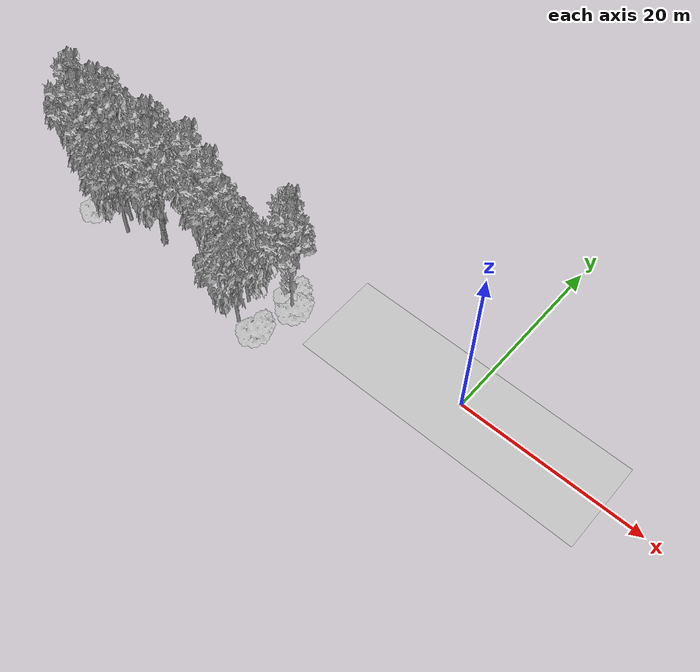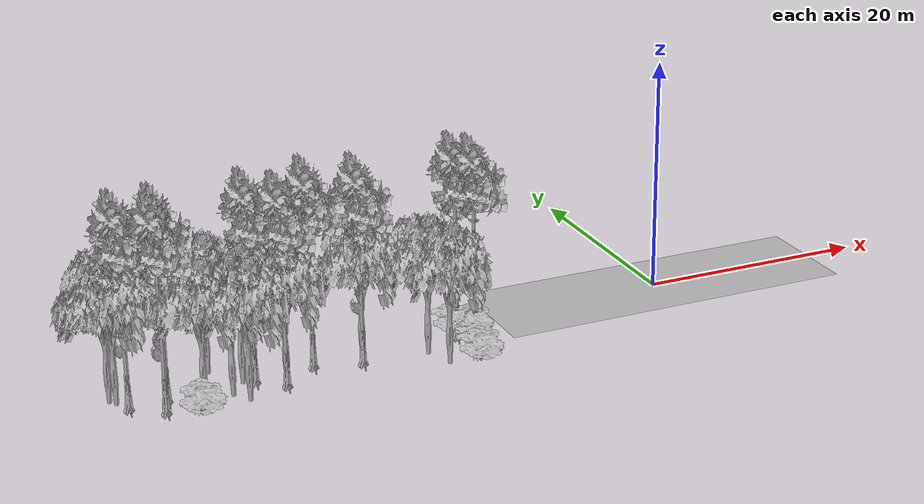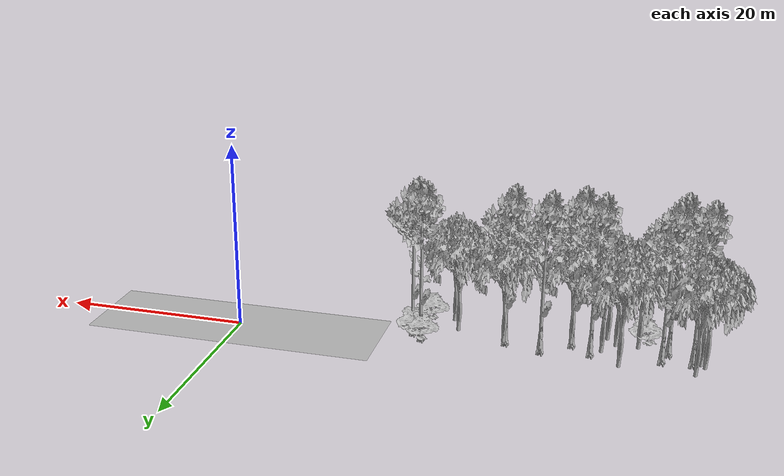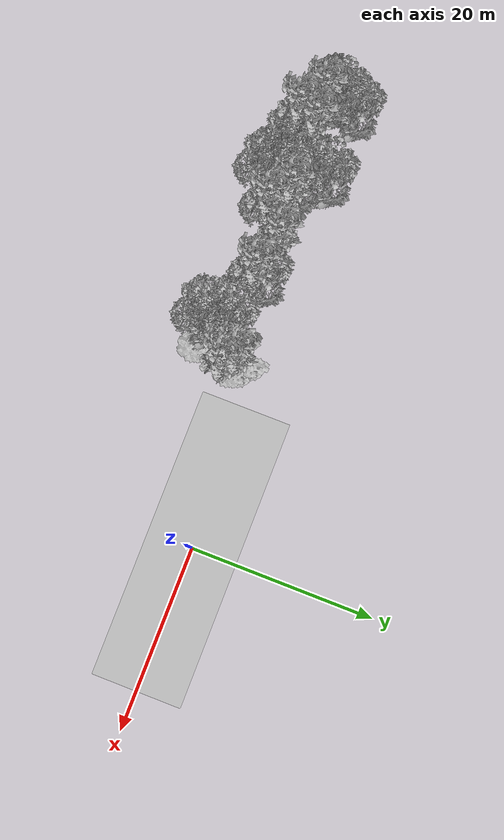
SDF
<sdf version="1.7">
 <world name="default">
  <model name="ground_plane">
   <static>1</static>
   <link name="link">
    <collision name="collision">
     <pose>-50 0 0 0 -0 0</pose>
     <geometry><plane><normal>0 0 1</normal><size>100 100</size></plane></geometry>
     <surface><contact><ode><min_depth>0.01</min_depth><max_vel>0</max_vel></ode></contact></surface>
    </collision>
    <visual name="grass">
     <cast_shadows>0</cast_shadows>
     <geometry>
      <mesh>
       <scale>0.5814285714285714 0.18142857142857144 0.1</scale>
       <uri>file://grass_plane/meshes/grass_plane.dae</uri>
      </mesh>
     </geometry>
    </visual>
   </link>
  </model>
  <model name="Tree 6">
   <static>1</static>
   <pose>-19.921143829720222 -7.141556950328466 0 1.57079 -0 0</pose>
   <link name="link">
    <collision name="collision">
     <geometry><mesh><scale>4 2.5 4</scale><uri>model://tree_1/meshes/tree_1.obj</uri></mesh></geometry>
    </collision>
    <visual name="visual">
     <geometry><mesh><scale>4 2.5 4</scale><uri>model://tree_1/meshes/tree_1.obj</uri></mesh></geometry>
    </visual>
   </link>
  </model>
  <model name="Tree 12">
   <static>1</static>
   <pose>-35.21450316078336 -4.842496373526851 0 1.57079 -0 0</pose>
   <link name="link">
    <collision name="collision">
     <geometry><mesh><scale>3.5 5 3.5</scale><uri>model://tree_9/meshes/tree_9.obj</uri></mesh></geometry>
    </collision>
    <visual name="visual">
     <geometry><mesh><scale>3.5 5 3.5</scale><uri>model://tree_9/meshes/tree_9.obj</uri></mesh></geometry>
    </visual>
   </link>
  </model>
  <model name="Tree 17">
   <static>1</static>
   <pose>-32.1912204562856 -2.5034486556960456 0 1.57079 -0 0</pose>
   <link name="link">
    <collision name="collision">
     <geometry><mesh><scale>3.5 5 3.5</scale><uri>model://tree_9/meshes/tree_9.obj</uri></mesh></geometry>
    </collision>
    <visual name="visual">
     <geometry><mesh><scale>3.5 5 3.5</scale><uri>model://tree_9/meshes/tree_9.obj</uri></mesh></geometry>
    </visual>
   </link>
  </model>
  <model name="Tree 32">
   <static>1</static>
   <pose>-23.273991926518562 -4.668934626666928 0 1.57079 -0 0</pose>
   <link name="link">
    <collision name="collision">
     <geometry><mesh><scale>3.5 5 3.5</scale><uri>model://tree_2/meshes/tree_2.obj</uri></mesh></geometry>
    </collision>
    <visual name="visual">
     <geometry><mesh><scale>3.5 5 3.5</scale><uri>model://tree_2/meshes/tree_2.obj</uri></mesh></geometry>
    </visual>
   </link>
  </model>
  <model name="Tree 53">
   <static>1</static>
   <pose>-48.74463080251558 -2.494339242078734 0 1.57079 -0 0</pose>
   <link name="link">
    <collision name="collision">
     <geometry><mesh><scale>3.5 5 3.5</scale><uri>model://tree_2/meshes/tree_2.obj</uri></mesh></geometry>
    </collision>
    <visual name="visual">
     <geometry><mesh><scale>3.5 5 3.5</scale><uri>model://tree_2/meshes/tree_2.obj</uri></mesh></geometry>
    </visual>
   </link>
  </model>
  <model name="Tree 55">
   <static>1</static>
   <pose>-37.256097933225696 -3.1840490196857267 0 1.57079 -0 0</pose>
   <link name="link">
    <collision name="collision">
     <geometry><mesh><scale>3.5 5 3.5</scale><uri>model://tree_9/meshes/tree_9.obj</uri></mesh></geometry>
    </collision>
    <visual name="visual">
     <geometry><mesh><scale>3.5 5 3.5</scale><uri>model://tree_9/meshes/tree_9.obj</uri></mesh></geometry>
    </visual>
   </link>
  </model>
  <model name="Tree 64">
   <static>1</static>
   <pose>-42.840589987612645 -6.923950979078535 0 1.57079 -0 0</pose>
   <link name="link">
    <collision name="collision">
     <geometry><mesh><scale>4 2.5 4</scale><uri>model://tree_1/meshes/tree_1.obj</uri></mesh></geometry>
    </collision>
    <visual name="visual">
     <geometry><mesh><scale>4 2.5 4</scale><uri>model://tree_1/meshes/tree_1.obj</uri></mesh></geometry>
    </visual>
   </link>
  </model>
  <model name="Tree 94">
   <static>1</static>
   <pose>-47.460586672422366 -3.5688703568057267 0 1.57079 -0 0</pose>
   <link name="link">
    <collision name="collision">
     <geometry><mesh><scale>3.5 5 3.5</scale><uri>model://tree_9/meshes/tree_9.obj</uri></mesh></geometry>
    </collision>
    <visual name="visual">
     <geometry><mesh><scale>3.5 5 3.5</scale><uri>model://tree_9/meshes/tree_9.obj</uri></mesh></geometry>
    </visual>
   </link>
  </model>
  <model name="Tree 138">
   <static>1</static>
   <pose>-18.775179936698713 -2.748795533213306 0 1.57079 -0 0</pose>
   <link name="link">
    <collision name="collision">
     <geometry><mesh><scale>4 2.5 4</scale><uri>model://tree_1/meshes/tree_1.obj</uri></mesh></geometry>
    </collision>
    <visual name="visual">
     <geometry><mesh><scale>4 2.5 4</scale><uri>model://tree_1/meshes/tree_1.obj</uri></mesh></geometry>
    </visual>
   </link>
  </model>
  <model name="Tree 141">
   <static>1</static>
   <pose>-40.38012025350969 -0.6694105297402153 0 1.57079 -0 0</pose>
   <link name="link">
    <collision name="collision">
     <geometry><mesh><scale>3.5 5 3.5</scale><uri>model://tree_2/meshes/tree_2.obj</uri></mesh></geometry>
    </collision>
    <visual name="visual">
     <geometry><mesh><scale>3.5 5 3.5</scale><uri>model://tree_2/meshes/tree_2.obj</uri></mesh></geometry>
    </visual>
   </link>
  </model>
  <model name="Tree 143">
   <static>1</static>
   <pose>-28.394436151200903 -3.580541412584541 0 1.57079 -0 0</pose>
   <link name="link">
    <collision name="collision">
     <geometry><mesh><scale>3.5 5 3.5</scale><uri>model://tree_9/meshes/tree_9.obj</uri></mesh></geometry>
    </collision>
    <visual name="visual">
     <geometry><mesh><scale>3.5 5 3.5</scale><uri>model://tree_9/meshes/tree_9.obj</uri></mesh></geometry>
    </visual>
   </link>
  </model>
  <model name="Tree 149">
   <static>1</static>
   <pose>-42.077103455713406 -5.350111635339076 0 1.57079 -0 0</pose>
   <link name="link">
    <collision name="collision">
     <geometry><mesh><scale>3.5 5 3.5</scale><uri>model://tree_2/meshes/tree_2.obj</uri></mesh></geometry>
    </collision>
    <visual name="visual">
     <geometry><mesh><scale>3.5 5 3.5</scale><uri>model://tree_2/meshes/tree_2.obj</uri></mesh></geometry>
    </visual>
   </link>
  </model>
  <model name="Tree 169">
   <static>1</static>
   <pose>-19.599579066360214 -2.169024919764622 0 1.57079 -0 0</pose>
   <link name="link">
    <collision name="collision">
     <geometry><mesh><scale>3.5 5 3.5</scale><uri>model://tree_9/meshes/tree_9.obj</uri></mesh></geometry>
    </collision>
    <visual name="visual">
     <geometry><mesh><scale>3.5 5 3.5</scale><uri>model://tree_9/meshes/tree_9.obj</uri></mesh></geometry>
    </visual>
   </link>
  </model>
  <model name="Tree 201">
   <static>1</static>
   <pose>-44.40741966262692 -3.455753523725006 0 1.57079 -0 0</pose>
   <link name="link">
    <collision name="collision">
     <geometry><mesh><scale>3.5 5 3.5</scale><uri>model://tree_9/meshes/tree_9.obj</uri></mesh></geometry>
    </collision>
    <visual name="visual">
     <geometry><mesh><scale>3.5 5 3.5</scale><uri>model://tree_9/meshes/tree_9.obj</uri></mesh></geometry>
    </visual>
   </link>
  </model>
  <model name="Tree 223">
   <static>1</static>
   <pose>-35.23256831414867 -4.641663941517633 0 1.57079 -0 0</pose>
   <link name="link">
    <collision name="collision">
     <geometry><mesh><scale>3.5 5 3.5</scale><uri>model://tree_2/meshes/tree_2.obj</uri></mesh></geometry>
    </collision>
    <visual name="visual">
     <geometry><mesh><scale>3.5 5 3.5</scale><uri>model://tree_2/meshes/tree_2.obj</uri></mesh></geometry>
    </visual>
   </link>
  </model>
  <model name="Tree 226">
   <static>1</static>
   <pose>-22.406267525618176 -7.038932187048327 0 1.57079 -0 0</pose>
   <link name="link">
    <collision name="collision">
     <geometry><mesh><scale>3.5 5 3.5</scale><uri>model://tree_2/meshes/tree_2.obj</uri></mesh></geometry>
    </collision>
    <visual name="visual">
     <geometry><mesh><scale>3.5 5 3.5</scale><uri>model://tree_2/meshes/tree_2.obj</uri></mesh></geometry>
    </visual>
   </link>
  </model>
  <model name="Tree 228">
   <static>1</static>
   <pose>-47.82799494953469 -0.6526142325046038 0 1.57079 -0 0</pose>
   <link name="link">
    <collision name="collision">
     <geometry><mesh><scale>3.5 5 3.5</scale><uri>model://tree_2/meshes/tree_2.obj</uri></mesh></geometry>
    </collision>
    <visual name="visual">
     <geometry><mesh><scale>3.5 5 3.5</scale><uri>model://tree_2/meshes/tree_2.obj</uri></mesh></geometry>
    </visual>
   </link>
  </model>
  <model name="Tree 232">
   <static>1</static>
   <pose>-48.345011885635095 -3.04024279838859 0 1.57079 -0 0</pose>
   <link name="link">
    <collision name="collision">
     <geometry><mesh><scale>3.5 5 3.5</scale><uri>model://tree_2/meshes/tree_2.obj</uri></mesh></geometry>
    </collision>
    <visual name="visual">
     <geometry><mesh><scale>3.5 5 3.5</scale><uri>model://tree_2/meshes/tree_2.obj</uri></mesh></geometry>
    </visual>
   </link>
  </model>
  <model name="Tree 245">
   <static>1</static>
   <pose>-45.034702167652114 -5.3329912718977575 0 1.57079 -0 0</pose>
   <link name="link">
    <collision name="collision">
     <geometry><mesh><scale>3.5 5 3.5</scale><uri>model://tree_9/meshes/tree_9.obj</uri></mesh></geometry>
    </collision>
    <visual name="visual">
     <geometry><mesh><scale>3.5 5 3.5</scale><uri>model://tree_9/meshes/tree_9.obj</uri></mesh></geometry>
    </visual>
   </link>
  </model>
  <model name="Tree 251">
   <static>1</static>
   <pose>-18.475004634319376 -3.294916596359963 0 1.57079 -0 0</pose>
   <link name="link">
    <collision name="collision">
     <geometry><mesh><scale>3.5 5 3.5</scale><uri>model://tree_9/meshes/tree_9.obj</uri></mesh></geometry>
    </collision>
    <visual name="visual">
     <geometry><mesh><scale>3.5 5 3.5</scale><uri>model://tree_9/meshes/tree_9.obj</uri></mesh></geometry>
    </visual>
   </link>
  </model>
  <model name="Tree 266">
   <static>1</static>
   <pose>-19.90958037953962 -1.7461403590014424 0 1.57079 -0 0</pose>
   <link name="link">
    <collision name="collision">
     <geometry><mesh><scale>4 2.5 4</scale><uri>model://tree_1/meshes/tree_1.obj</uri></mesh></geometry>
    </collision>
    <visual name="visual">
     <geometry><mesh><scale>4 2.5 4</scale><uri>model://tree_1/meshes/tree_1.obj</uri></mesh></geometry>
    </visual>
   </link>
  </model>
  <model name="Tree 268">
   <static>1</static>
   <pose>-28.35979647997235 -3.1959876840087773 0 1.57079 -0 0</pose>
   <link name="link">
    <collision name="collision">
     <geometry><mesh><scale>3.5 5 3.5</scale><uri>model://tree_2/meshes/tree_2.obj</uri></mesh></geometry>
    </collision>
    <visual name="visual">
     <geometry><mesh><scale>3.5 5 3.5</scale><uri>model://tree_2/meshes/tree_2.obj</uri></mesh></geometry>
    </visual>
   </link>
  </model>
  <model name="Tree 269">
   <static>1</static>
   <pose>-39.79144084259751 -5.308218472032687 0 1.57079 -0 0</pose>
   <link name="link">
    <collision name="collision">
     <geometry><mesh><scale>3.5 5 3.5</scale><uri>model://tree_2/meshes/tree_2.obj</uri></mesh></geometry>
    </collision>
    <visual name="visual">
     <geometry><mesh><scale>3.5 5 3.5</scale><uri>model://tree_2/meshes/tree_2.obj</uri></mesh></geometry>
    </visual>
   </link>
  </model>
  <model name="Tree 271">
   <static>1</static>
   <pose>-38.44661999459399 -3.526190937715713 0 1.57079 -0 0</pose>
   <link name="link">
    <collision name="collision">
     <geometry><mesh><scale>3.5 5 3.5</scale><uri>model://tree_2/meshes/tree_2.obj</uri></mesh></geometry>
    </collision>
    <visual name="visual">
     <geometry><mesh><scale>3.5 5 3.5</scale><uri>model://tree_2/meshes/tree_2.obj</uri></mesh></geometry>
    </visual>
   </link>
  </model>
  <model name="Tree 299">
   <static>1</static>
   <pose>-38.85508297874437 -6.638235526782832 0 1.57079 -0 0</pose>
   <link name="link">
    <collision name="collision">
     <geometry><mesh><scale>3.5 5 3.5</scale><uri>model://tree_2/meshes/tree_2.obj</uri></mesh></geometry>
    </collision>
    <visual name="visual">
     <geometry><mesh><scale>3.5 5 3.5</scale><uri>model://tree_2/meshes/tree_2.obj</uri></mesh></geometry>
    </visual>
   </link>
  </model>
 </world>
</sdf>
